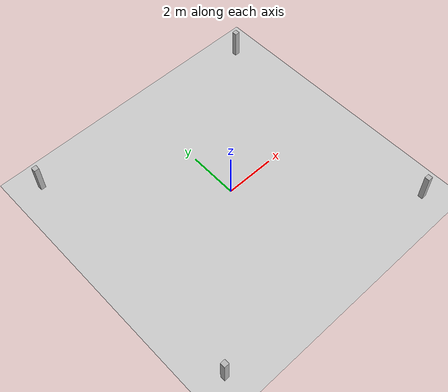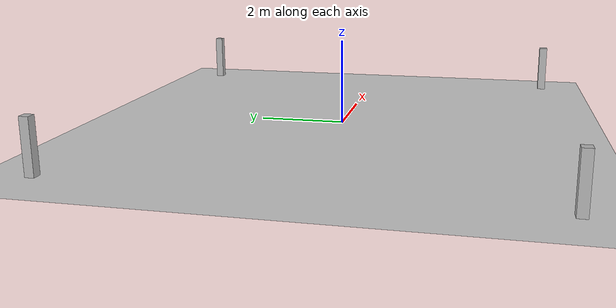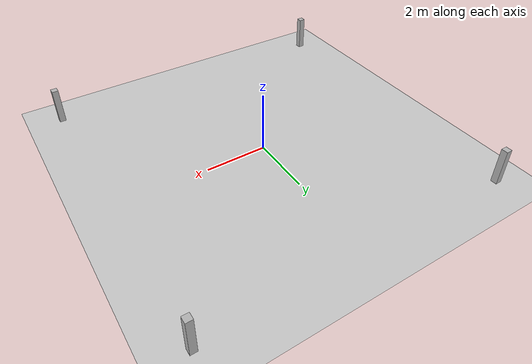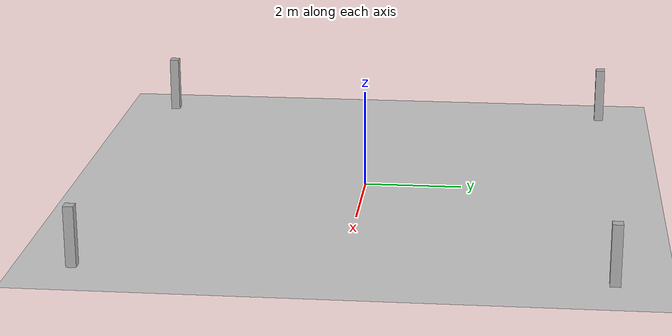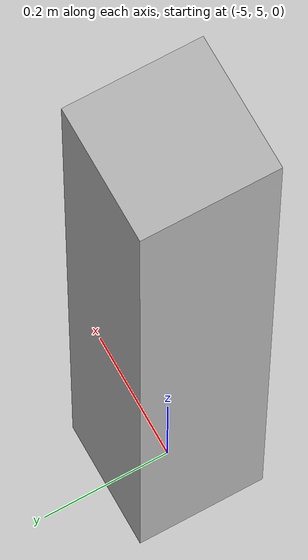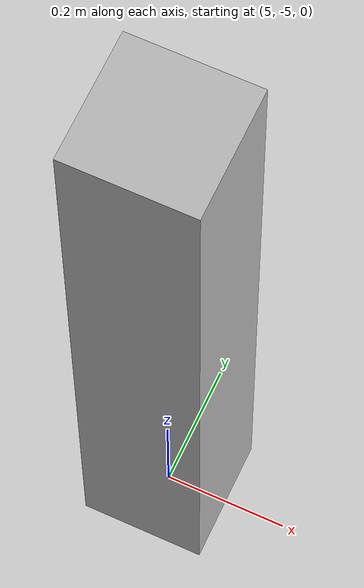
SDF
<sdf version="1.5">
 <world name="default">
  <include><uri>model://sun</uri></include>
  <include><uri>model://ground_plane</uri></include>
  <include><uri>model://asphalt_plane</uri></include>
  <model name="uwb_anchor0">
   <pose>-5.0 -5.0 0.6 0 0 0</pose>
   <static>1</static>
   <link name="link">
    <visual name="visual"><geometry><box><size>0.2 0.2 1.2</size></box></geometry></visual>
   </link>
  </model>
  <model name="uwb_anchor1">
   <pose>-5.0 5.0 0.6 0 0 0</pose>
   <static>1</static>
   <link name="link">
    <visual name="visual"><geometry><box><size>0.2 0.2 1.2</size></box></geometry></visual>
   </link>
  </model>
  <model name="uwb_anchor2">
   <pose>5.0 5.0 0.6 0 0 0</pose>
   <static>1</static>
   <link name="link">
    <visual name="visual"><geometry><box><size>0.2 0.2 1.2</size></box></geometry></visual>
   </link>
  </model>
  <model name="uwb_anchor3">
   <pose>5.0 -5.0 0.6 0 0 0</pose>
   <static>1</static>
   <link name="link">
    <visual name="visual"><geometry><box><size>0.2 0.2 1.2</size></box></geometry></visual>
   </link>
  </model>
  <physics name="default_physics" default="0" type="ode">
   <gravity>0 0 -9.8066</gravity>
   <ode>
    <solver>
     <type>quick</type>
     <iters>10</iters>
     <sor>1.3</sor>
     <use_dynamic_moi_rescaling>0</use_dynamic_moi_rescaling>
    </solver>
    <constraints>
     <cfm>0</cfm>
     <erp>0.2</erp>
     <contact_max_correcting_vel>100</contact_max_correcting_vel>
     <contact_surface_layer>0.001</contact_surface_layer>
    </constraints>
   </ode>
   <max_step_size>0.002</max_step_size>
   <real_time_factor>1</real_time_factor>
   <real_time_update_rate>500</real_time_update_rate>
   <magnetic_field>6.0e-6 2.3e-5 -4.2e-5</magnetic_field>
  </physics>
 </world>
</sdf>
